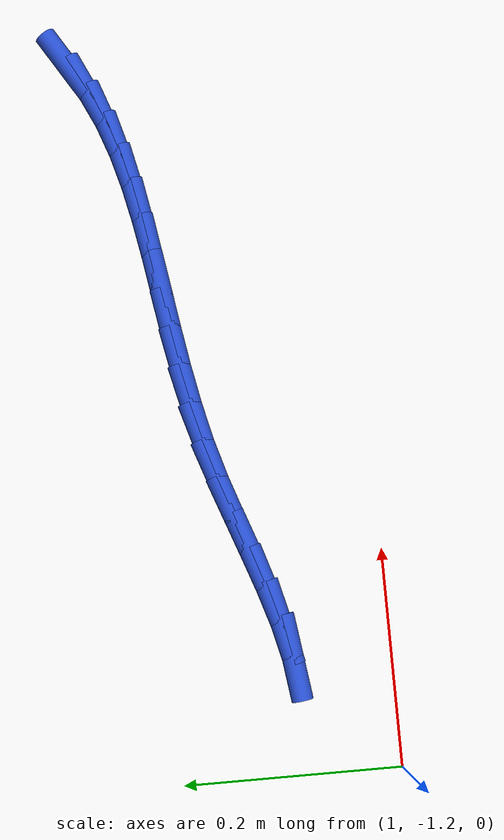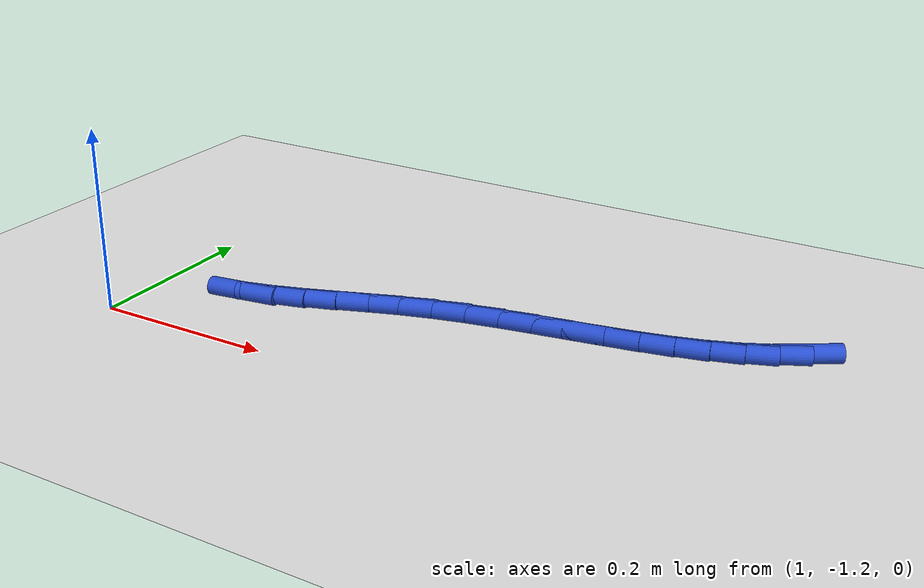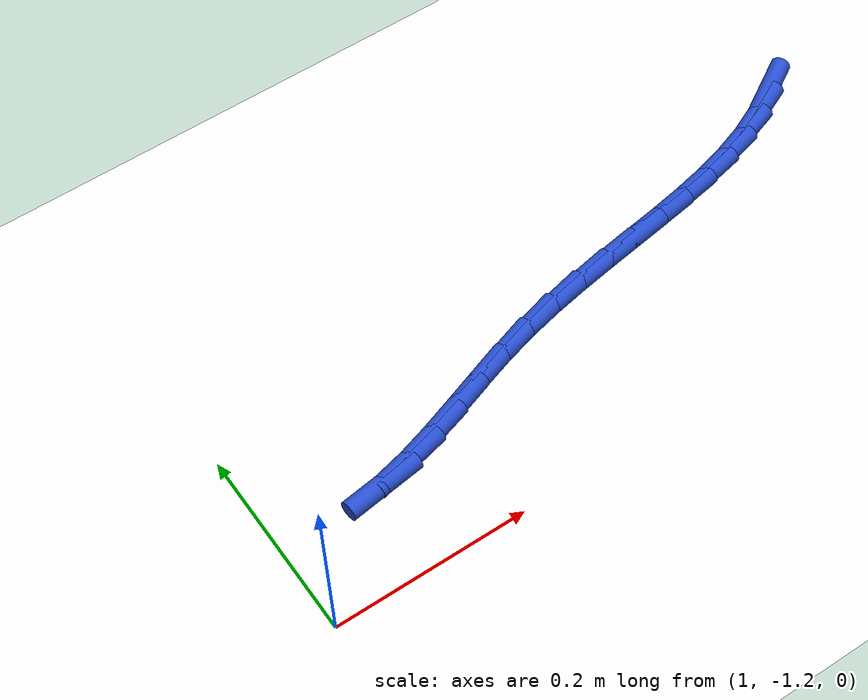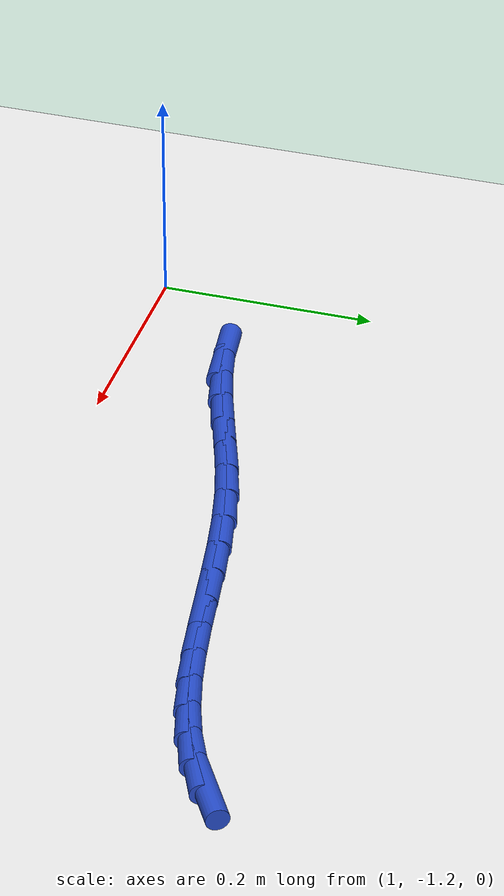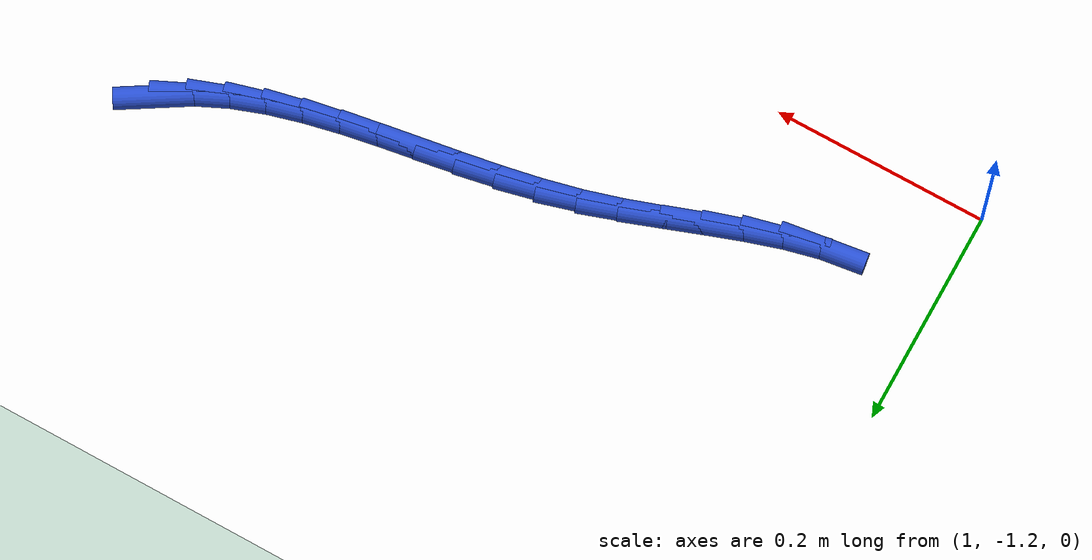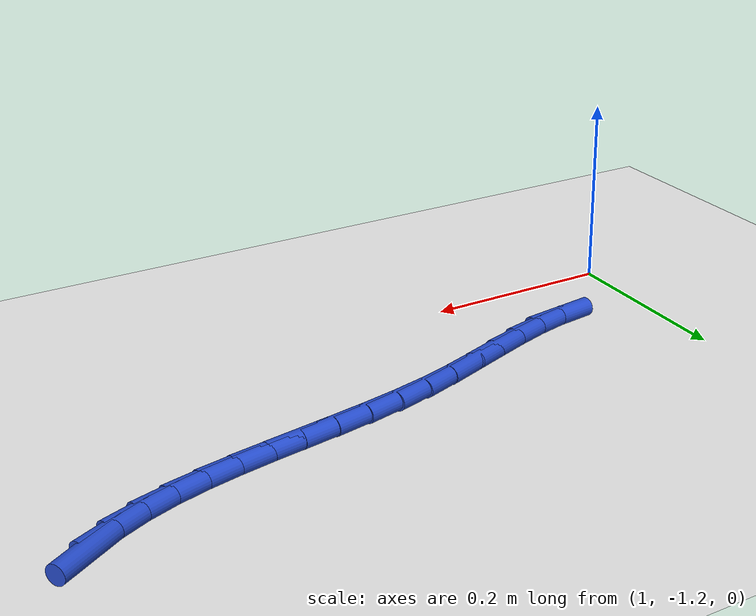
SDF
<sdf version="1.6">
 <world name="default">
  <model name="ground_plane">
   <static>1</static>
   <link name="link">
    <collision name="collision">
     <geometry><plane><normal>0 0 1</normal><size>100 100</size></plane></geometry>
     <surface><friction><ode><mu>100</mu><mu2>50</mu2></ode></friction></surface>
    </collision>
    <visual name="visual">
     <cast_shadows>0</cast_shadows>
     <geometry><plane><normal>0 0 1</normal><size>100 100</size></plane></geometry>
     <material>
      <script><uri>file://media/materials/scripts/gazebo.material</uri><name>Gazebo/WhiteGlow</name></script>
     </material>
    </visual>
   </link>
  </model>
  <model name="line">
   <link name="link_139">
    <pose>1.6755530083463823 -0.9497705678310857 0.01 0 1.57 0.5524367987249359</pose>
    <collision name="collision">
     <geometry><cylinder><radius>0.01</radius><length>0.08</length></cylinder></geometry>
    </collision>
    <visual name="visual">
     <material>
      <script><name>Gazebo/Blue</name><uri>file://media/materials/scripts/gazebo.material</uri></script>
     </material>
     <geometry><cylinder><radius>0.01</radius><length>0.08</length></cylinder></geometry>
    </visual>
   </link>
   <link name="link_140">
    <pose>1.6489918007213593 -0.9661445701793978 0.01 0 1.57 0.4352977935247771</pose>
    <collision name="collision">
     <geometry><cylinder><radius>0.01</radius><length>0.08</length></cylinder></geometry>
    </collision>
    <visual name="visual">
     <material>
      <script><name>Gazebo/Blue</name><uri>file://media/materials/scripts/gazebo.material</uri></script>
     </material>
     <geometry><cylinder><radius>0.01</radius><length>0.08</length></cylinder></geometry>
    </visual>
   </link>
   <link name="link_141">
    <pose>1.6202915686035768 -0.9794915785898696 0.01 0 1.57 0.34005330097413233</pose>
    <collision name="collision">
     <geometry><cylinder><radius>0.01</radius><length>0.08</length></cylinder></geometry>
    </collision>
    <visual name="visual">
     <material>
      <script><name>Gazebo/Blue</name><uri>file://media/materials/scripts/gazebo.material</uri></script>
     </material>
     <geometry><cylinder><radius>0.01</radius><length>0.08</length></cylinder></geometry>
    </visual>
   </link>
   <link name="link_142">
    <pose>1.589723247786312 -0.9903065541951219 0.01 0 1.57 0.2664112533170149</pose>
    <collision name="collision">
     <geometry><cylinder><radius>0.01</radius><length>0.08</length></cylinder></geometry>
    </collision>
    <visual name="visual">
     <material>
      <script><name>Gazebo/Blue</name><uri>file://media/materials/scripts/gazebo.material</uri></script>
     </material>
     <geometry><cylinder><radius>0.01</radius><length>0.08</length></cylinder></geometry>
    </visual>
   </link>
   <link name="link_143">
    <pose>1.5575577740628404 -0.999084458127775 0.01 0 1.57 0.21277708632923356</pose>
    <collision name="collision">
     <geometry><cylinder><radius>0.01</radius><length>0.08</length></cylinder></geometry>
    </collision>
    <visual name="visual">
     <material>
      <script><name>Gazebo/Blue</name><uri>file://media/materials/scripts/gazebo.material</uri></script>
     </material>
     <geometry><cylinder><radius>0.01</radius><length>0.08</length></cylinder></geometry>
    </visual>
   </link>
   <link name="link_144">
    <pose>1.5240660832264388 -1.0063202515204497 0.01 0 1.57 0.17725698141682855</pose>
    <collision name="collision">
     <geometry><cylinder><radius>0.01</radius><length>0.08</length></cylinder></geometry>
    </collision>
    <visual name="visual">
     <material>
      <script><name>Gazebo/Blue</name><uri>file://media/materials/scripts/gazebo.material</uri></script>
     </material>
     <geometry><cylinder><radius>0.01</radius><length>0.08</length></cylinder></geometry>
    </visual>
   </link>
   <link name="link_145">
    <pose>1.4895191110703823 -1.012508895505766 0.01 0 1.57 0.15819835691634188</pose>
    <collision name="collision">
     <geometry><cylinder><radius>0.01</radius><length>0.08</length></cylinder></geometry>
    </collision>
    <visual name="visual">
     <material>
      <script><name>Gazebo/Blue</name><uri>file://media/materials/scripts/gazebo.material</uri></script>
     </material>
     <geometry><cylinder><radius>0.01</radius><length>0.08</length></cylinder></geometry>
    </visual>
   </link>
   <link name="link_146">
    <pose>1.4541877933879492 -1.018145351216345 0.01 0 1.57 0.1544108990911465</pose>
    <collision name="collision">
     <geometry><cylinder><radius>0.01</radius><length>0.08</length></cylinder></geometry>
    </collision>
    <visual name="visual">
     <material>
      <script><name>Gazebo/Blue</name><uri>file://media/materials/scripts/gazebo.material</uri></script>
     </material>
     <geometry><cylinder><radius>0.01</radius><length>0.08</length></cylinder></geometry>
    </visual>
   </link>
   <link name="link_147">
    <pose>1.418343065972415 -1.023724579784807 0.01 0 1.57 0.1652141667075026</pose>
    <collision name="collision">
     <geometry><cylinder><radius>0.01</radius><length>0.08</length></cylinder></geometry>
    </collision>
    <visual name="visual">
     <material>
      <script><name>Gazebo/Blue</name><uri>file://media/materials/scripts/gazebo.material</uri></script>
     </material>
     <geometry><cylinder><radius>0.01</radius><length>0.08</length></cylinder></geometry>
    </visual>
   </link>
   <link name="link_148">
    <pose>1.3822558646170555 -1.0297415423437728 0.01 0 1.57 0.19039702206489906</pose>
    <collision name="collision">
     <geometry><cylinder><radius>0.01</radius><length>0.08</length></cylinder></geometry>
    </collision>
    <visual name="visual">
     <material>
      <script><name>Gazebo/Blue</name><uri>file://media/materials/scripts/gazebo.material</uri></script>
     </material>
     <geometry><cylinder><radius>0.01</radius><length>0.08</length></cylinder></geometry>
    </visual>
   </link>
   <link name="link_149">
    <pose>1.346197125115148 -1.0366912000258626 0.01 0 1.57 0.23011933459183065</pose>
    <collision name="collision">
     <geometry><cylinder><radius>0.01</radius><length>0.08</length></cylinder></geometry>
    </collision>
    <visual name="visual">
     <material>
      <script><name>Gazebo/Blue</name><uri>file://media/materials/scripts/gazebo.material</uri></script>
     </material>
     <geometry><cylinder><radius>0.01</radius><length>0.08</length></cylinder></geometry>
    </visual>
   </link>
   <link name="link_150">
    <pose>1.3104377832599676 -1.045068513963697 0.01 0 1.57 0.2830727952023539</pose>
    <collision name="collision">
     <geometry><cylinder><radius>0.01</radius><length>0.08</length></cylinder></geometry>
    </collision>
    <visual name="visual">
     <material>
      <script><name>Gazebo/Blue</name><uri>file://media/materials/scripts/gazebo.material</uri></script>
     </material>
     <geometry><cylinder><radius>0.01</radius><length>0.08</length></cylinder></geometry>
    </visual>
   </link>
   <link name="link_151">
    <pose>1.2752357981639943 -1.055308213665704 0.01 0 1.57 0.32688381246659504</pose>
    <collision name="collision">
     <geometry><cylinder><radius>0.01</radius><length>0.08</length></cylinder></geometry>
    </collision>
    <visual name="visual">
     <material>
      <script><name>Gazebo/Blue</name><uri>file://media/materials/scripts/gazebo.material</uri></script>
     </material>
     <geometry><cylinder><radius>0.01</radius><length>0.08</length></cylinder></geometry>
    </visual>
   </link>
   <link name="link_152">
    <pose>1.2406728188576746 -1.0670266804995734 0.01 0 1.57 0.34541275469166066</pose>
    <collision name="collision">
     <geometry><cylinder><radius>0.01</radius><length>0.08</length></cylinder></geometry>
    </collision>
    <visual name="visual">
     <material>
      <script><name>Gazebo/Blue</name><uri>file://media/materials/scripts/gazebo.material</uri></script>
     </material>
     <geometry><cylinder><radius>0.01</radius><length>0.08</length></cylinder></geometry>
    </visual>
   </link>
   <link name="link_153">
    <pose>1.2067033614697946 -1.079250204940314 0.01 0 1.57 0.3378297171405482</pose>
    <collision name="collision">
     <geometry><cylinder><radius>0.01</radius><length>0.08</length></cylinder></geometry>
    </collision>
    <visual name="visual">
     <material>
      <script><name>Gazebo/Blue</name><uri>file://media/materials/scripts/gazebo.material</uri></script>
     </material>
     <geometry><cylinder><radius>0.01</radius><length>0.08</length></cylinder></geometry>
    </visual>
   </link>
   <link name="link_154">
    <pose>1.1732791317766547 -1.0909920331338334 0.01 0 1.57 0.3024309943354328</pose>
    <collision name="collision">
     <geometry><cylinder><radius>0.01</radius><length>0.08</length></cylinder></geometry>
    </collision>
    <visual name="visual">
     <material>
      <script><name>Gazebo/Blue</name><uri>file://media/materials/scripts/gazebo.material</uri></script>
     </material>
     <geometry><cylinder><radius>0.01</radius><length>0.08</length></cylinder></geometry>
    </visual>
   </link>
   <link name="link_155">
    <pose>1.1403518355545539 -1.1012654112260367 0.01 0 1.57 0.2362230900660157</pose>
    <collision name="collision">
     <geometry><cylinder><radius>0.01</radius><length>0.08</length></cylinder></geometry>
    </collision>
    <visual name="visual">
     <material>
      <script><name>Gazebo/Blue</name><uri>file://media/materials/scripts/gazebo.material</uri></script>
     </material>
     <geometry><cylinder><radius>0.01</radius><length>0.08</length></cylinder></geometry>
    </visual>
   </link>
   <link name="link_156">
    <pose>1.107873178579791 -1.1090835853628298 0.01 0 1.57 0.13558589477282695</pose>
    <collision name="collision">
     <geometry><cylinder><radius>0.01</radius><length>0.08</length></cylinder></geometry>
    </collision>
    <visual name="visual">
     <material>
      <script><name>Gazebo/Blue</name><uri>file://media/materials/scripts/gazebo.material</uri></script>
     </material>
     <geometry><cylinder><radius>0.01</radius><length>0.08</length></cylinder></geometry>
    </visual>
   </link>
  </model>
 </world>
</sdf>
